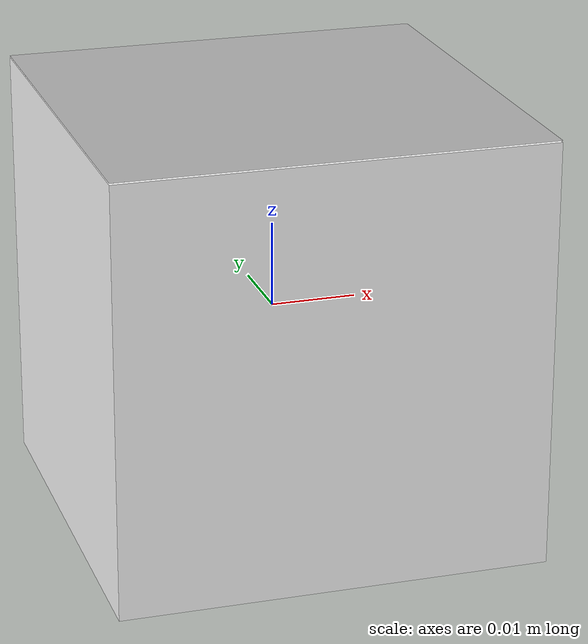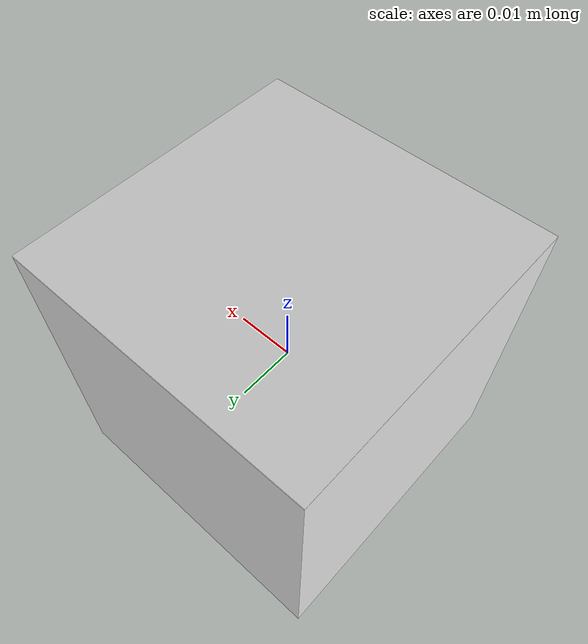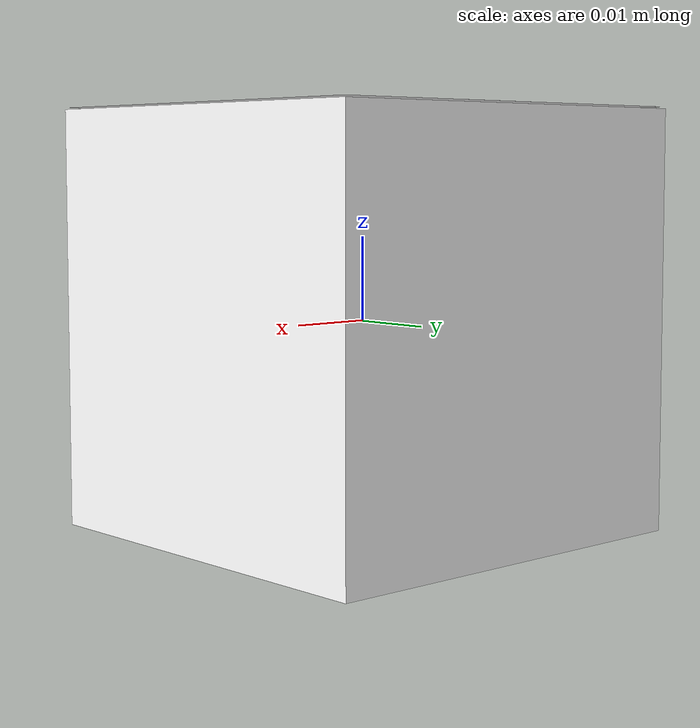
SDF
<?xml version='1.0'?>
<sdf version="1.4">
  <model name="my_model">
    <pose>0 0 0 0 0 0</pose>
    <static>false</static>
    <link name="link">
      <inertial>
        <mass>1.0</mass>
        <inertia>
          <ixx>0.083</ixx>
          <ixy>0.0</ixy>
          <ixz>0.0</ixz>
          <iyy>0.083</iyy>
          <iyz>0.0</iyz>
          <izz>0.083</izz>
        </inertia>
      </inertial>
      <collision name="collision">
        <geometry>
          <box>
            <size>0.05 0.05 0.05</size>
          </box>
        </geometry>
      </collision>
      <visual name="visual">
        <geometry>
          <box>
            <size>0.05 0.05 0.05</size>
          </box>
        </geometry>
        <material>
          <ambient>1 1 1 1</ambient>
          <diffuse>1 1 1 1</diffuse>
          <specular>0 0 0 1</specular>
          <emissive>0 0 0 1</emissive>
        </material>
      </visual>
      <visual name="aruco_mark1">
        <pose>0 0 0.0252 0 0 1.5708</pose>
        <cast_shadows>false</cast_shadows>
        <geometry>
          <box>
            <size>0.05 0.05 0.000001</size>
          </box>
        </geometry>
        <material>
          <script>
            <uri>model://the_cube_1/materials/scripts</uri>
            <uri>model://the_cube_1/materials/textures/</uri>
            <name>aruco_mark_0/Image</name>
          </script>
        </material>
      </visual>
    </link>
  </model>
</sdf>
